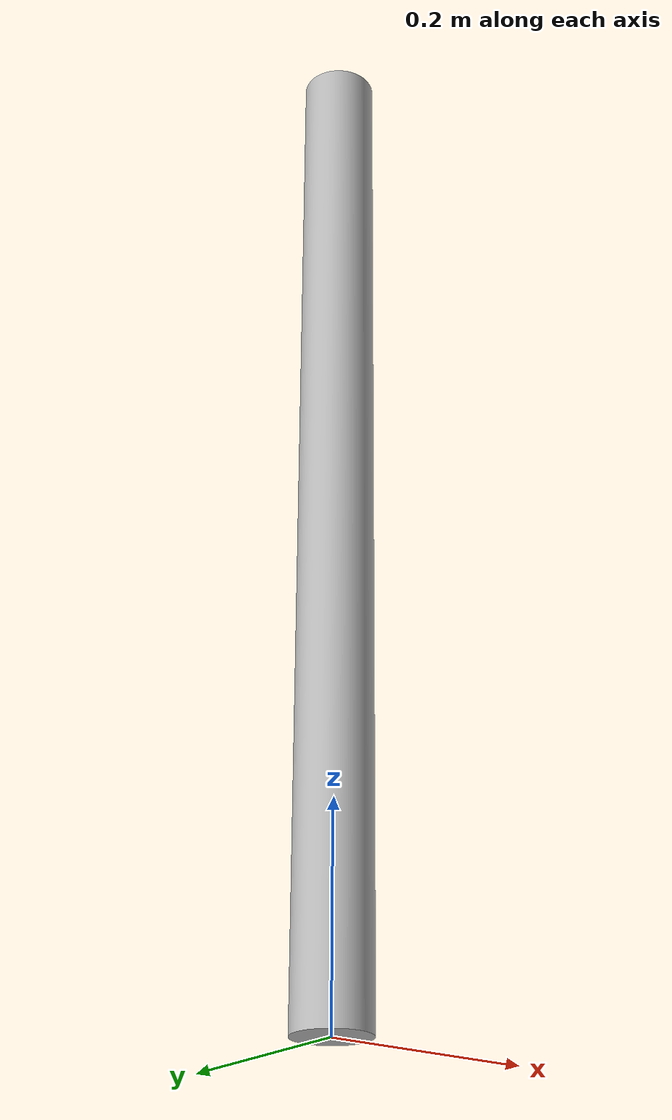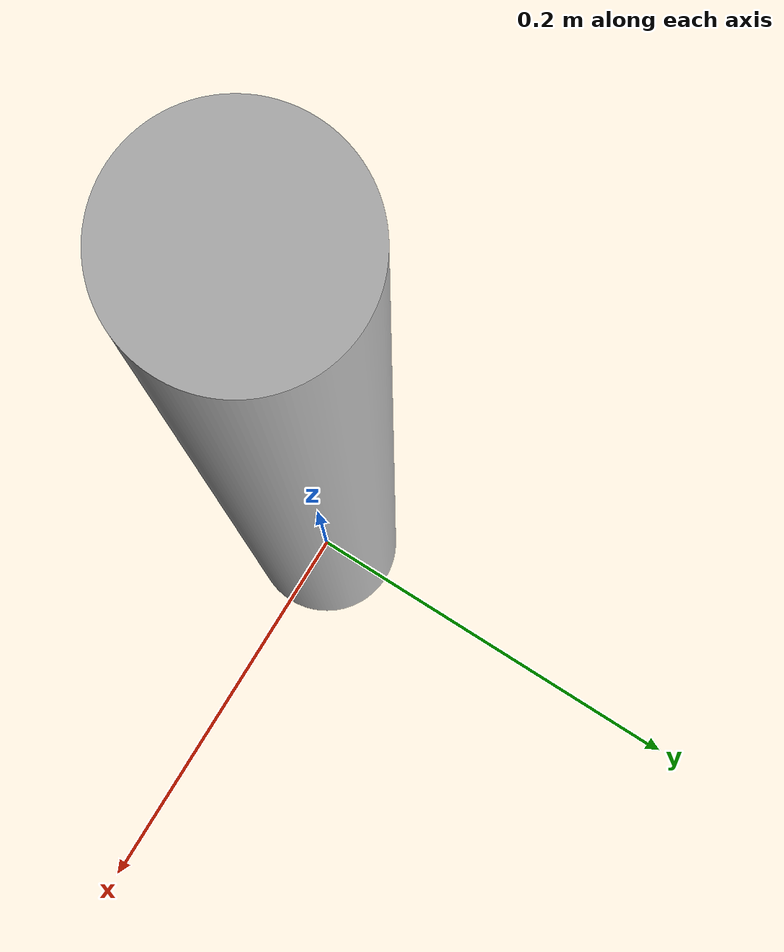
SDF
<?xml version="1.0" ?>
<sdf version="1.6">
  <model name="rod_target">
    <link name="link">
      <inertial>
        <pose>0 0 0 0 0 0</pose>
        <mass>1000.0</mass>
        <inertia>
          <ixx>0.083</ixx>
          <ixy>0.0</ixy>
          <ixz>0.0</ixz>
          <iyy>0.083</iyy>
          <iyz>0.0</iyz>
          <izz>0.083</izz>
        </inertia>
      </inertial>
      <collision name="collision">
        <geometry>
          <mesh>
            <uri>model://rod_target/meshes/rod_target.stl</uri>
            <!-- 7 cm in diameter and about 105 cm in length -->
            <scale>0.00007 0.00007 0.00015</scale>
          </mesh>
        </geometry>
      </collision>
      <visual name="visual">
        <geometry>
          <mesh>
            <uri>model://rod_target/meshes/COLLISION_rod_target.stl</uri>
            <!-- 7 cm in diameter and about 105 cm in length -->
            <scale>0.00007 0.00007 0.00015</scale>
          </mesh>
        </geometry>
      </visual>
    </link>
  </model>
</sdf>
